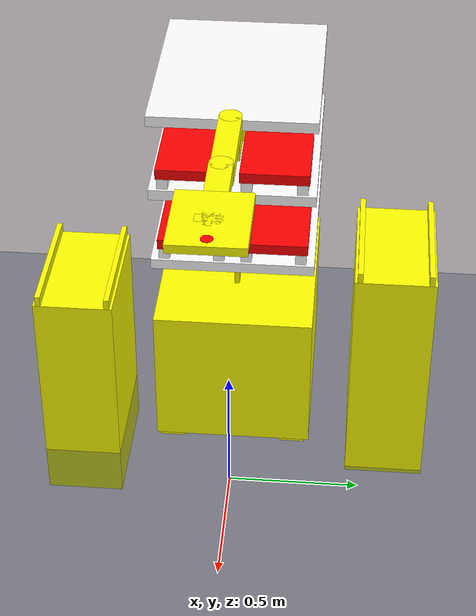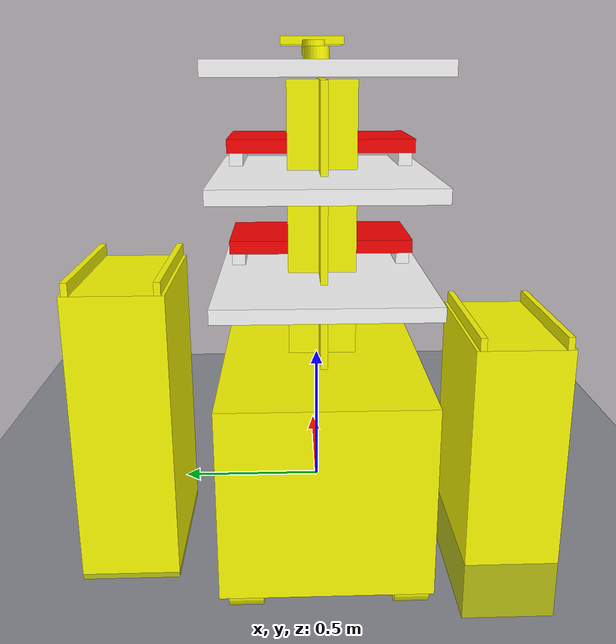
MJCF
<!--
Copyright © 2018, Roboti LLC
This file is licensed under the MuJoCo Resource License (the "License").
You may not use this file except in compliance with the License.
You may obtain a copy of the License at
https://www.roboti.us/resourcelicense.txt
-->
<mujoco model="Humanoid">

	<compiler inertiafromgeom="true" angle="degree"/>

	<default>
		<joint limited="true" damping="10" armature="0"/>
		<geom condim="1" material="matgeom"/>
	</default>

	<option timestep="0.002" iterations="50" tolerance="1e-10" solver="Newton" jacobian="dense" cone="pyramidal"/>
	<size nconmax="500" njmax="2000" nstack="10000"/>

	<visual>
		<map force="0.1" zfar="30"/>
		<rgba haze="0.15 0.25 0.35 1" contactfriction =" 0.9 0.8 0.4 1"/>
		<quality shadowsize="2048"/>
		<global offwidth="800" offheight="800"/>
	</visual>

	<asset>
		<texture type="skybox" builtin="gradient" rgb1="0.3 0.5 0.7" rgb2="0 0 0" width="512" height="512"/>
		<texture name="texplane" type="2d" builtin="checker" rgb1=".2 .3 .4" rgb2=".1 0.15 0.2" width="512" height="512" mark="cross" markrgb=".8 .8 .8"/>
		<texture name="texgeom" type="cube" builtin="flat" mark="cross" width="127" height="1278"
            rgb1 ="0.65 0.65 0.65" rgb2="0.65 0.65 0.65" markrgb="1 1 1" random="0.01"/>
		<material name="matplane" reflectance="0.3" texture="texplane" texrepeat="1 1" texuniform="true"/>
		<material name="matgeom"  rgba =" 1.0 1.0 1.0 1 "  texture="texgeom"  texuniform="true" />
	</asset>

	<worldbody>
		<geom name="floor" pos="0 0 0" size="0 0 .25" type="plane" material="matplane" condim="3"/>
		<light directional="false" diffuse=".2 .2 .2" specular="0 0 0" pos="0 0 5" dir="0 0 -1" castshadow="false"/>
		<body name="body0" pos="0.0 0.0 0.86" >
			<body name="link1" pos="0.08 0.0 0.70 " >
				<joint name ="position1" type ="slide" pos="-0.175 0.0 0.0" axis="0 0 1" range="-5.0 5.0" frictionloss="0" damping="0"  />
				<joint name="motor1" type="hinge" pos="-0.175 0.0 0.0" axis="0 0 1" range="-3600 3600" damping="10" stiffness="0" armature="0.0" />
				<geom name	="geo1" type="box"  size="0.175 0.04 0.025" rgba="1.0 1.0 0.0 1"/>
				<geom name ="geo1_end1" type ="cylinder" pos =" 0.175 0.0 0.0" size ="0.04 0.025" rgba="1.0 1.0 0.0 1"/>
				<geom name ="geo1_end2" type ="cylinder" pos =" -0.175 0.0 0.0" size ="0.04 0.025" rgba="1.0 1.0 0.0 1"/>
				<inertial pos="0 0 0" mass="1" diaginertia="0.16 0.16 0.16"/>
				<body name="link2" pos="0.35 0.0 0.03" >
					<joint name="motor2" type="hinge" pos="-0.175 0.0 0.0" axis="0 0 1" range ="-3600 3600 "  damping="10" stiffness="0" armature="0.0" />
					<geom name	="geo2" type="box"  size="0.175 0.04 0.025" rgba="1.0 1.0 0.0 1"/>
					<geom name ="geo2_end1" type ="cylinder" pos =" 0.175 0.0 0.0" size ="0.04 0.025" rgba="1.0 1.0 0.0 1"/>
					<geom name ="geo2_end2" type ="cylinder" pos =" -0.175 0.0 0.0" size ="0.04 0.025" rgba="1.0 1.0 0.0 1"/>
					<inertial pos="0 0 0" mass="1" diaginertia="0.16 0.16 0.16"/>
					<body name="link3" pos="0.175 0.0 0.03"  >
						<joint name="motor3" type="hinge" pos="0.0 0.0 0.0" axis="0 0 1"  range="-3600 3600" damping="10" stiffness="0.0" armature="0.0"  />
						<geom name	="geo3" type="box"  size="0.02 0.05 0.015" rgba="1.0 1.0 0.0 1" />
						<geom name ="geo3_end1" type ="cylinder" pos =" 0.0 0.0 0.0" condim ="1" size ="0.04 0.015"  friction ="  10.0 10.0 10.0 " rgba="1.0 1.0 0.0 1"/>
						<geom name ="geo3_end2" type ="box" pos =" 0.0 0.0 0.0"  size ="0.15 0.125 0.015"  friction ="  10.0 10.0 10.0 " rgba="1.0 1.0 0.0 1" />
						<!-- 테스트 확인용 -->
						<geom name ="geo3_end3" type ="cylinder" pos =" 0.11 0.0 0.0" condim ="1" size ="0.02 0.016"  friction ="  10.0 10.0 10.0 " rgba="1.0 0.0 0.0 1" />

						<inertial pos="0.0 0.0 0.0" mass="1" diaginertia="0.16 0.16 0.16"/>
					</body>
				</body>
			</body>
		</body>

		<body name="body1" pos="-0.51 0.0 1.52" >
			<geom name	="geo4_4thfloor" type="box"  size="0.37 0.30 0.02" rgba =" 1.3 1.3 1.3 1" />
			<body name="body2" pos="0.0 0.0 -0.3" >
				<geom name	="geo4_3rdfloor" type="box"  size="0.37 0.30 0.02" rgba =" 1.3 1.3 1.3 1"/>
				<geom name ="geo4_3ndfloor_1" type="box" pos ="0.225 0.05 0.04" size ="0.135 0.02 0.02 " rgba =" 1.5 1.5 1.5 1"></geom>
				<geom name ="geo4_3ndfloor_2" type="box" pos ="0.225 0.25 0.04" size ="0.135 0.02 0.02" rgba =" 1.5 1.5 1.5 1"></geom>
				<geom name ="geo4_3ndfloor_3" type="box" pos ="0.225 -0.05 0.04" size ="0.135 0.02 0.02 " rgba =" 1.5 1.5 1.5 1"></geom>
				<geom name ="geo4_3ndfloor_4" type="box" pos ="0.225 -0.25 0.04" size ="0.135 0.02 0.02 " rgba =" 1.5 1.5 1.5 1"></geom>
				<body name="body3" pos="0.0 0.0 -0.3" >
					<geom name	="geo4_2ndfloor" type="box"  size="0.37 0.30 0.02" rgba =" 1.3 1.3 1.3  1"/>
					<geom name ="geo4_2ndfloor_1" type="box" pos ="0.225 0.05 0.04"  size ="0.135 0.02 0.02 " rgba =" 1.5 1.5 1.5 1"></geom>
					<geom name ="geo4_2ndfloor_2" type="box" pos ="0.225 0.25 0.04"  size ="0.135 0.02 0.02 " rgba =" 1.5 1.5 1.5 1"></geom>
					<geom name ="geo4_2ndfloor_3" type="box" pos ="0.225 -0.05 0.04" size ="0.135 0.02 0.02 " rgba =" 1.5 1.5 1.5 1"></geom>
					<geom name ="geo4_2ndfloor_4" type="box" pos ="0.225 -0.25 0.04" size ="0.135 0.02 0.02 " rgba =" 1.5 1.5 1.5 1"></geom>

					<body name="body4" pos="0.0 0.0 -0.54" >
						<geom name	="geo4_1stfloor" type="box"  size="0.37 0.30 0.28" rgba="2.0 1.0 0.0 1"/>
						<body name="body5" pos="0.0 0.0 0.71" >
							<geom name	="geo4_center" type="box"  size="0.15 0.01 0.4" rgba="2.0 1.0 0.0 1"  />
							<body name="body6" pos="0.0 0.0 0.0" >
								<geom name	="geo4_center2" type="box"  size="0.01 0.10 0.4" rgba="2.0 1.0 0.0 1"  />
								<body name="body8" pos="0.25 -0.40 -1.04" >
									<geom name	="geo4_wheel1" type="cylinder" size="0.05 0.01"  fromto ="0 0.1 0 0 0.2 0" rgba="2.0 1.0 0.0 1"/>
									<geom name	="geo4_wheel2" type="cylinder" size="0.05 0.01" fromto ="-0.5 0.1 0 -0.5 0.2 0" rgba="2.0 1.0 0.0 1"/>
									<geom name	="geo4_wheel3" type="cylinder" size="0.05 0.01"  fromto ="-0.5 0.58 0 -0.5 0.68 0" rgba="2.0 1.0 0.0 1"/>
									<geom name	="geo4_wheel4" type="cylinder" size="0.05 0.01"  fromto ="0 0.58 0 0 0.68 0" rgba="2.0 1.0 0.0 1"/>

								</body>
							</body>
						</body>
					</body>
				</body>
			</body>
		</body>

		<body name="table" pos="-0.36 0.6 0.44" >
			<geom name	="table" type="box"  size="0.25 0.15 0.46"  condim ="1"  friction ="1 0.006 0.0001" rgba="2.0 1.0 0.0 1" />
			<geom name	="table_1" type="box"  size ="0.25 0.01 0.02 " condim ="1"  pos="0 0.13 0.48" friction ="1 1 1" rgba="2.0 1.0 0.0 1"/>
			<geom name	="table_2" type="box"  size ="0.25 0.01 0.02 " condim ="1"  pos="0 -0.13 0.48" friction ="1 1 1" rgba="2.0 1.0 0.0 1"/>

		</body>

		<body name="table2" pos="-0.36 -0.6 0.26" >
			<geom name	="table2" type="box"  size="0.25 0.15 0.46"  condim ="1"  friction ="1 0.006 0.0001" rgba="2.0 1.0 0.0 1" />
			<geom name	="table_12" type="box"  size ="0.25 0.01 0.02 " condim ="1"  pos="0 0.13 0.48" friction ="1 1 1" rgba="2.0 1.0 0.0 1"/>
			<geom name	="table_22" type="box"  size ="0.25 0.01 0.02 " condim ="1"  pos="0 -0.13 0.48" friction ="1 1 1" rgba="2.0 1.0 0.0 1"/>

		</body>

		<body pos="-0.30 0.15 1.00" >
			<freejoint/>
			<geom name ="tray1" type="box"  size="0.15 0.125 0.02" rgba="1.0 0.0 0.0 1" condim ="1" friction ="10.0 10.0 10.0" gap ="0" margin ="0.0" />
			<geom name ="tray11" type="box"  size="0.15 0.125 0.02" rgba="1.0 0.0 0.0 1" condim ="3" friction ="10.0 10.0 10.0" gap ="0" margin ="0.0" />
			<inertial pos="0.0 0.0 0.0" mass="0.5" diaginertia="0.01 0.01 0.01"  />
		</body>

		<body pos="-0.30 -0.15 1.00" >
			<freejoint/>
			<geom name ="tray2" type="box"  size="0.15 0.125 0.02" rgba="1.0 0.0 0.0 1" condim ="1" friction ="10.0 10.0 10.0" gap ="0" margin ="0.0" />
			<geom name ="tray22" type="box"  size="0.15 0.125 0.02" rgba="1.0 0.0 0.0 1" condim ="3" friction ="10.0 10.0 10.0" gap ="0" margin ="0.0" />
			<inertial pos="0.0 0.0 0.0" mass="0.5" diaginertia="0.01 0.01 0.01"  />
		</body>

		<body pos="-0.30 0.15 1.30" >
			<freejoint/>
			<geom name ="tray3" type="box"  size="0.15 0.125 0.02" rgba="1.0 0.0 0.0 1" condim ="1" friction ="10.0 10.0 10.0" gap ="0" margin ="0.0" />
			<geom name ="tray33" type="box"  size="0.15 0.125 0.02" rgba="1.0 0.0 0.0 1" condim ="3" friction ="10.0 10.0 10.0" gap ="0" margin ="0.0" />
			<inertial pos="0.0 0.0 0.0" mass="0.5" diaginertia="0.01 0.01 0.01"  />
		</body>

		<body pos="-0.30 -0.15 1.30" >
			<freejoint/>
			<geom name ="tray4" type="box"  size="0.15 0.125 0.02" rgba="1.0 0.0 0.0 1" condim ="1" friction ="10.0 10.0 10.0" gap ="0" margin ="0.0" />
			<geom name ="tray44" type="box"  size="0.15 0.125 0.02" rgba="1.0 0.0 0.0 1" condim ="3" friction ="10.0 10.0 10.0" gap ="0" margin ="0.0" />
			<inertial pos="0.0 0.0 0.0" mass="0.5" diaginertia="0.01 0.01 0.01"  />
		</body>

	</worldbody>

	<actuator>
		<position name ="position1" joint = "position1"/>
		<motor name="motor1"  gear="100"  joint="motor1" />
		<motor name="motor2"  gear="100"  joint="motor2" />
		<motor name="motor3"  gear="100"  joint="motor3" />

	</actuator>

</mujoco>
